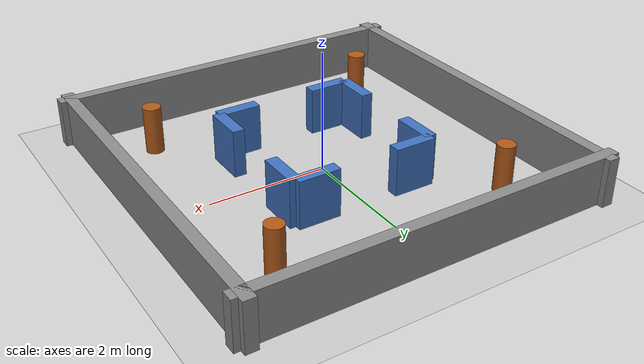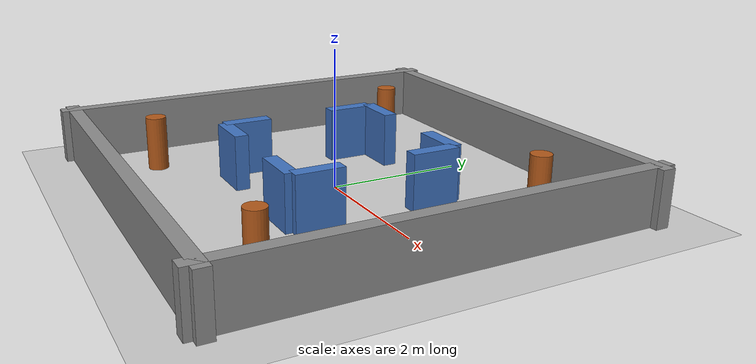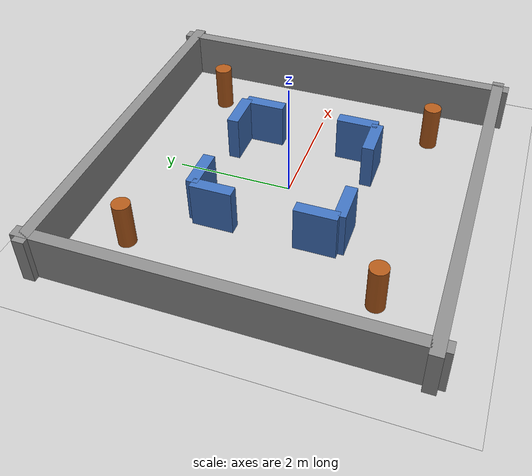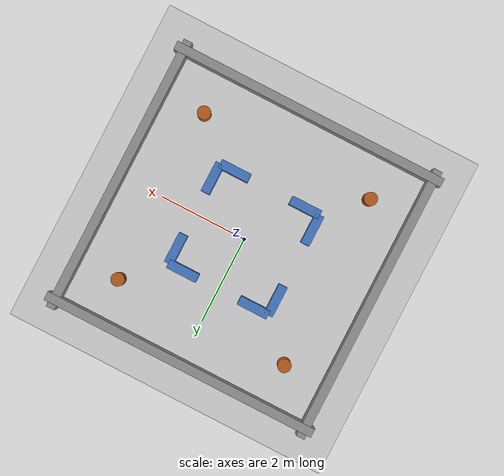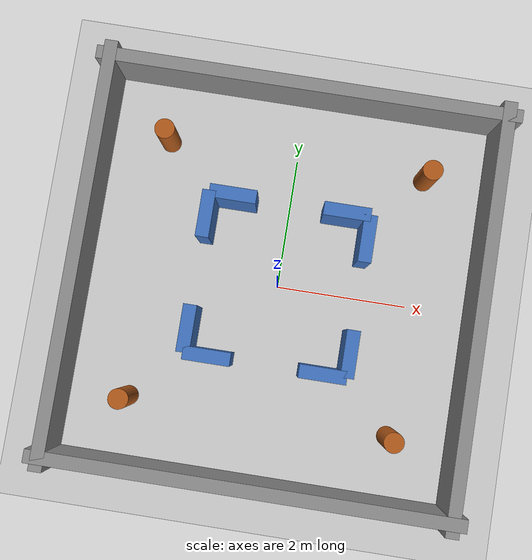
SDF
<?xml version="1.0" ?>

<sdf version="1.9" xmlns:xsi="http://www.w3.org/2001/XMLSchema-instance"
    xsi:noNamespaceSchemaLocation="http://sdformat.org/schemas/root.xsd">
    <world name="turtle_world">

        <!-- /////////////////// GLOBAL CONFIGURATIONS ///////////////////// -->
        <physics name="fast" type="ignored">
            <max_step_size>0.001</max_step_size>
            <real_time_factor>1.0</real_time_factor>
        </physics>
        <plugin filename="gz-sim-physics-system"
                name="gz::sim::systems::Physics"/>
        <plugin filename="gz-sim-user-commands-system"
                name="gz::sim::systems::UserCommands"/>
        <plugin filename="gz-sim-scene-broadcaster-system"
                name="gz::sim::systems::SceneBroadcaster"/>

        <!-- /////////////////// GUI CONSIDERATIONS ///////////////////// -->
        <gui fullscreen="0">
            <plugin filename="GzScene3D" name="3D View">
                <gz-gui>
                    <title>3D View</title>
                    <property type="bool" key="showTitleBar">false</property>
                    <property type="string" key="state">docked</property>
                </gz-gui>
                <engine>ogre2</engine>
                <scene>scene</scene>
                <ambient_light>0.4 0.4 0.4</ambient_light>
                <background_color>0.8 0.8 0.8</background_color>
                <camera_pose>0 -9 7 0 0.7 1.57</camera_pose>
            </plugin>

            <plugin filename="EntityContextMenuPlugin" name="Entity context menu">
                <gz-gui>
                    <property key="state" type="string">floating</property>
                    <property key="width" type="double">5</property>
                    <property key="height" type="double">5</property>
                    <property key="showTitleBar" type="bool">false</property>
                </gz-gui>
            </plugin>

            <plugin filename="InteractiveViewControl" name="Interactive view control">
                <gz-gui>
                    <property key="resizable" type="bool">false</property>
                    <property key="width" type="double">5</property>
                    <property key="height" type="double">5</property>
                    <property key="state" type="string">floating</property>
                    <property key="showTitleBar" type="bool">false</property>
                </gz-gui>
            </plugin>

            <plugin filename="CameraTracking" name="Camera Tracking">
                <gz-gui>
                    <property key="resizable" type="bool">false</property>
                    <property key="width" type="double">5</property>
                    <property key="height" type="double">5</property>
                    <property key="state" type="string">floating</property>
                    <property key="showTitleBar" type="bool">false</property>
                </gz-gui>
            </plugin>

            <plugin filename="WorldControl" name="WorldControl">
                <gz-gui>
                    <title>World control</title>
                    <property type="bool" key="showTitleBar">false</property>
                    <property type="bool" key="resizable">false</property>
                    <property type="double" key="height">72</property>
                    <property type="double" key="width">121</property>
                    <property type="double" key="z">1</property>
                    <property type="string" key="state">floating</property>
                    <anchors target="3D View">
                        <line own="left" target="left"/>
                        <line own="bottom" target="bottom"/>
                    </anchors>
                </gz-gui>
                <play_pause>true</play_pause>
                <step>true</step>
                <start_paused>true</start_paused>
            </plugin>

            <plugin filename="WorldStats" name="WorldStats">
                <gz-gui>
                    <title>World stats</title>
                    <property type="bool" key="showTitleBar">false</property>
                    <property type="bool" key="resizable">false</property>
                    <property type="double" key="height">110</property>
                    <property type="double" key="width">290</property>
                    <property type="double" key="z">1</property>
                    <property type="string" key="state">floating</property>
                    <anchors target="3D View">
                        <line own="right" target="right"/>
                        <line own="bottom" target="bottom"/>
                    </anchors>
                </gz-gui>
                <sim_time>true</sim_time>
                <real_time>true</real_time>
                <real_time_factor>true</real_time_factor>
                <iterations>true</iterations>
            </plugin>

            <plugin filename="Shapes" name="Shapes">
                <gz-gui>
                    <property key="resizable" type="bool">false</property>
                    <property key="x" type="double">0</property>
                    <property key="y" type="double">0</property>
                    <property key="width" type="double">250</property>
                    <property key="height" type="double">50</property>
                    <property key="state" type="string">floating</property>
                    <property key="showTitleBar" type="bool">false</property>
                    <property key="cardBackground" type="string">#666666</property>
                </gz-gui>
            </plugin>

            <plugin filename="Lights" name="Lights">
                <gz-gui>
                    <property key="resizable" type="bool">false</property>
                    <property key="x" type="double">250</property>
                    <property key="y" type="double">0</property>
                    <property key="width" type="double">150</property>
                    <property key="height" type="double">50</property>
                    <property key="state" type="string">floating</property>
                    <property key="showTitleBar" type="bool">false</property>
                    <property key="cardBackground" type="string">#666666</property>
                </gz-gui>
            </plugin>

            <plugin filename="TransformControl" name="TransformControl">
                <gz-gui>
                    <property key="resizable" type="bool">false</property>
                    <property key="x" type="double">0</property>
                    <property key="y" type="double">50</property>
                    <property key="width" type="double">250</property>
                    <property key="height" type="double">50</property>
                    <property key="state" type="string">floating</property>
                    <property key="showTitleBar" type="bool">false</property>
                    <property key="cardBackground" type="string">#777777</property>
                </gz-gui>
            </plugin>

            <plugin filename="Screenshot" name="Screenshot">
                <gz-gui>
                    <property key="resizable" type="bool">false</property>
                    <property key="x" type="double">250</property>
                    <property key="y" type="double">50</property>
                    <property key="width" type="double">50</property>
                    <property key="height" type="double">50</property>
                    <property key="state" type="string">floating</property>
                    <property key="showTitleBar" type="bool">false</property>
                    <property key="cardBackground" type="string">#777777</property>
                </gz-gui>
            </plugin>

            <plugin filename="EntityTree" name="Entity tree">
                <gz-gui>
                    <property type="string" key="state">docked_collapsed</property>
                </gz-gui>
            </plugin>

            <plugin filename="ComponentInspector" name="Component inspector">
                <gz-gui>
                    <property type="string" key="state">docked_collapsed</property>
                </gz-gui>
            </plugin>

            <plugin filename="ImageDisplay" name="Image Display 2">
                <gz-gui>
                    <title>Depth camera</title>
                    <property key="state" type="string">floating</property>
                    <property type="double" key="width">350</property>
                    <property type="double" key="height">315</property>
                    <property type="double" key="x">1070</property>
                </gz-gui>
                <topic>/world/turtle_world/model/orion/link/base_link/sensor/camera/depth_image</topic>
                <topic_picker>true</topic_picker>
            </plugin>

            <plugin filename="ImageDisplay" name="Image Display 3">
                <gz-gui>
                    <title>Camera Image</title>
                    <property key="state" type="string">floating</property>
                    <property type="double" key="width">350</property>
                    <property type="double" key="height">315</property>
                    <property type="double" key="y">320</property>
                    <property type="double" key="x">1070</property>
                </gz-gui>
                <topic>/world/turtle_world/model/orion/link/base_link/sensor/camera/image</topic>
                <topic_picker>true</topic_picker>
            </plugin>

            <plugin filename="VisualizeLidar" name="Visualize Lidar">
                <gz-gui>
                    <property type="string" key="state">docked_collapsed</property>
                </gz-gui>
            </plugin>

            <plugin filename="JointPositionController" name="Joint Position Controller">
                <gz-gui>
                    <property type="string" key="state">docked_collapsed</property>
                </gz-gui>
            </plugin>

            <plugin filename="Teleop" name="Teleop">
                <gz-gui>
                    <property type="string" key="state">docked</property>
                </gz-gui>
                <topic>/model/orion/cmd_vel</topic>
            </plugin>
        </gui>

        <!-- //////////////////////// Scene configuration //////////////// -->
        <scene>
            <ambient>1 1 1 1</ambient>
            <background>0.3 0.7 0.9 1</background>
            <shadows>1</shadows>
            <grid>true</grid>
        </scene>

        <light type="directional" name="sun">
            <cast_shadows>true</cast_shadows>
            <pose>0 0 10 0 0 0</pose>
            <diffuse>0.8 0.8 0.8 1</diffuse>
            <specular>0.2 0.2 0.2 1</specular>
            <attenuation>
                <range>1000</range>
                <constant>0.9</constant>
                <linear>0.01</linear>
                <quadratic>0.001</quadratic>
            </attenuation>
            <direction>-0.5 0.1 -0.9</direction>
        </light>

        <!-- Ground plane -->
        <model name="ground_plane">
            <static>true</static>
            <link name="link">
                <collision name="collision">
                    <geometry>
                        <plane><normal>0 0 1</normal><size>100 100</size></plane>
                    </geometry>
                </collision>
                <visual name="visual">
                    <geometry>
                        <plane><normal>0 0 1</normal><size>100 100</size></plane>
                    </geometry>
                    <material>
                        <ambient>0.8 0.8 0.8 1</ambient>
                        <diffuse>0.8 0.8 0.8 1</diffuse>
                        <specular>0.8 0.8 0.8 1</specular>
                    </material>
                </visual>
            </link>
        </model>

        <!-- ===== OUTER PERIMETER WALLS (6 x 6 m) ===== -->
        <model name="outer_south">
            <static>true</static>
            <pose>0 -3 0.4 0 0 0</pose>
            <link name="link">
                <collision name="collision"><geometry><box><size>6.4 0.2 0.8</size></box></geometry></collision>
                <visual name="visual">
                    <geometry><box><size>6.4 0.2 0.8</size></box></geometry>
                    <material><ambient>0.55 0.55 0.55 1</ambient><diffuse>0.55 0.55 0.55 1</diffuse><specular>0.3 0.3 0.3 1</specular></material>
                </visual>
            </link>
        </model>

        <model name="outer_north">
            <static>true</static>
            <pose>0 3 0.4 0 0 0</pose>
            <link name="link">
                <collision name="collision"><geometry><box><size>6.4 0.2 0.8</size></box></geometry></collision>
                <visual name="visual">
                    <geometry><box><size>6.4 0.2 0.8</size></box></geometry>
                    <material><ambient>0.55 0.55 0.55 1</ambient><diffuse>0.55 0.55 0.55 1</diffuse><specular>0.3 0.3 0.3 1</specular></material>
                </visual>
            </link>
        </model>

        <model name="outer_west">
            <static>true</static>
            <pose>-3 0 0.4 0 0 0</pose>
            <link name="link">
                <collision name="collision"><geometry><box><size>0.2 6.4 0.8</size></box></geometry></collision>
                <visual name="visual">
                    <geometry><box><size>0.2 6.4 0.8</size></box></geometry>
                    <material><ambient>0.55 0.55 0.55 1</ambient><diffuse>0.55 0.55 0.55 1</diffuse><specular>0.3 0.3 0.3 1</specular></material>
                </visual>
            </link>
        </model>

        <model name="outer_east">
            <static>true</static>
            <pose>3 0 0.4 0 0 0</pose>
            <link name="link">
                <collision name="collision"><geometry><box><size>0.2 6.4 0.8</size></box></geometry></collision>
                <visual name="visual">
                    <geometry><box><size>0.2 6.4 0.8</size></box></geometry>
                    <material><ambient>0.55 0.55 0.55 1</ambient><diffuse>0.55 0.55 0.55 1</diffuse><specular>0.3 0.3 0.3 1</specular></material>
                </visual>
            </link>
        </model>

        <!-- South side of inner square (y = -1.2) -->
        <model name="inner_south_w">
            <static>true</static>
            <pose>-0.85 -1.2 0.4 0 0 0</pose>
            <link name="link">
                <collision name="collision"><geometry><box><size>0.7 0.2 0.8</size></box></geometry></collision>
                <visual name="visual">
                    <geometry><box><size>0.7 0.2 0.8</size></box></geometry>
                    <material><ambient>0.25 0.45 0.75 1</ambient><diffuse>0.25 0.45 0.75 1</diffuse><specular>0.3 0.3 0.3 1</specular></material>
                </visual>
            </link>
        </model>

        <model name="inner_south_e">
            <static>true</static>
            <pose>0.85 -1.2 0.4 0 0 0</pose>
            <link name="link">
                <collision name="collision"><geometry><box><size>0.7 0.2 0.8</size></box></geometry></collision>
                <visual name="visual">
                    <geometry><box><size>0.7 0.2 0.8</size></box></geometry>
                    <material><ambient>0.25 0.45 0.75 1</ambient><diffuse>0.25 0.45 0.75 1</diffuse><specular>0.3 0.3 0.3 1</specular></material>
                </visual>
            </link>
        </model>

        <!-- North side of inner square (y = +1.2) -->
        <model name="inner_north_w">
            <static>true</static>
            <pose>-0.85 1.2 0.4 0 0 0</pose>
            <link name="link">
                <collision name="collision"><geometry><box><size>0.7 0.2 0.8</size></box></geometry></collision>
                <visual name="visual">
                    <geometry><box><size>0.7 0.2 0.8</size></box></geometry>
                    <material><ambient>0.25 0.45 0.75 1</ambient><diffuse>0.25 0.45 0.75 1</diffuse><specular>0.3 0.3 0.3 1</specular></material>
                </visual>
            </link>
        </model>

        <model name="inner_north_e">
            <static>true</static>
            <pose>0.85 1.2 0.4 0 0 0</pose>
            <link name="link">
                <collision name="collision"><geometry><box><size>0.7 0.2 0.8</size></box></geometry></collision>
                <visual name="visual">
                    <geometry><box><size>0.7 0.2 0.8</size></box></geometry>
                    <material><ambient>0.25 0.45 0.75 1</ambient><diffuse>0.25 0.45 0.75 1</diffuse><specular>0.3 0.3 0.3 1</specular></material>
                </visual>
            </link>
        </model>

        <!-- West side of inner square (x = -1.2) -->
        <model name="inner_west_s">
            <static>true</static>
            <pose>-1.2 -0.85 0.4 0 0 0</pose>
            <link name="link">
                <collision name="collision"><geometry><box><size>0.2 0.7 0.8</size></box></geometry></collision>
                <visual name="visual">
                    <geometry><box><size>0.2 0.7 0.8</size></box></geometry>
                    <material><ambient>0.25 0.45 0.75 1</ambient><diffuse>0.25 0.45 0.75 1</diffuse><specular>0.3 0.3 0.3 1</specular></material>
                </visual>
            </link>
        </model>

        <model name="inner_west_n">
            <static>true</static>
            <pose>-1.2 0.85 0.4 0 0 0</pose>
            <link name="link">
                <collision name="collision"><geometry><box><size>0.2 0.7 0.8</size></box></geometry></collision>
                <visual name="visual">
                    <geometry><box><size>0.2 0.7 0.8</size></box></geometry>
                    <material><ambient>0.25 0.45 0.75 1</ambient><diffuse>0.25 0.45 0.75 1</diffuse><specular>0.3 0.3 0.3 1</specular></material>
                </visual>
            </link>
        </model>

        <!-- East side of inner square (x = +1.2) -->
        <model name="inner_east_s">
            <static>true</static>
            <pose>1.2 -0.85 0.4 0 0 0</pose>
            <link name="link">
                <collision name="collision"><geometry><box><size>0.2 0.7 0.8</size></box></geometry></collision>
                <visual name="visual">
                    <geometry><box><size>0.2 0.7 0.8</size></box></geometry>
                    <material><ambient>0.25 0.45 0.75 1</ambient><diffuse>0.25 0.45 0.75 1</diffuse><specular>0.3 0.3 0.3 1</specular></material>
                </visual>
            </link>
        </model>

        <model name="inner_east_n">
            <static>true</static>
            <pose>1.2 0.85 0.4 0 0 0</pose>
            <link name="link">
                <collision name="collision"><geometry><box><size>0.2 0.7 0.8</size></box></geometry></collision>
                <visual name="visual">
                    <geometry><box><size>0.2 0.7 0.8</size></box></geometry>
                    <material><ambient>0.25 0.45 0.75 1</ambient><diffuse>0.25 0.45 0.75 1</diffuse><specular>0.3 0.3 0.3 1</specular></material>
                </visual>
            </link>
        </model>

        <!-- ===== CORNER PILLARS (radius 0.15 m, height 0.8 m) ===== -->
        <model name="pillar_ne">
            <static>true</static>
            <pose>2 2 0.4 0 0 0</pose>
            <link name="link">
                <collision name="collision"><geometry><cylinder><radius>0.15</radius><length>0.8</length></cylinder></geometry></collision>
                <visual name="visual">
                    <geometry><cylinder><radius>0.15</radius><length>0.8</length></cylinder></geometry>
                    <material><ambient>0.7 0.35 0.1 1</ambient><diffuse>0.7 0.35 0.1 1</diffuse><specular>0.3 0.3 0.3 1</specular></material>
                </visual>
            </link>
        </model>

        <model name="pillar_nw">
            <static>true</static>
            <pose>-2 2 0.4 0 0 0</pose>
            <link name="link">
                <collision name="collision"><geometry><cylinder><radius>0.15</radius><length>0.8</length></cylinder></geometry></collision>
                <visual name="visual">
                    <geometry><cylinder><radius>0.15</radius><length>0.8</length></cylinder></geometry>
                    <material><ambient>0.7 0.35 0.1 1</ambient><diffuse>0.7 0.35 0.1 1</diffuse><specular>0.3 0.3 0.3 1</specular></material>
                </visual>
            </link>
        </model>

        <model name="pillar_se">
            <static>true</static>
            <pose>2 -2 0.4 0 0 0</pose>
            <link name="link">
                <collision name="collision"><geometry><cylinder><radius>0.15</radius><length>0.8</length></cylinder></geometry></collision>
                <visual name="visual">
                    <geometry><cylinder><radius>0.15</radius><length>0.8</length></cylinder></geometry>
                    <material><ambient>0.7 0.35 0.1 1</ambient><diffuse>0.7 0.35 0.1 1</diffuse><specular>0.3 0.3 0.3 1</specular></material>
                </visual>
            </link>
        </model>

        <model name="pillar_sw">
            <static>true</static>
            <pose>-2 -2 0.4 0 0 0</pose>
            <link name="link">
                <collision name="collision"><geometry><cylinder><radius>0.15</radius><length>0.8</length></cylinder></geometry></collision>
                <visual name="visual">
                    <geometry><cylinder><radius>0.15</radius><length>0.8</length></cylinder></geometry>
                    <material><ambient>0.7 0.35 0.1 1</ambient><diffuse>0.7 0.35 0.1 1</diffuse><specular>0.3 0.3 0.3 1</specular></material>
                </visual>
            </link>
        </model>

    </world>
</sdf>
